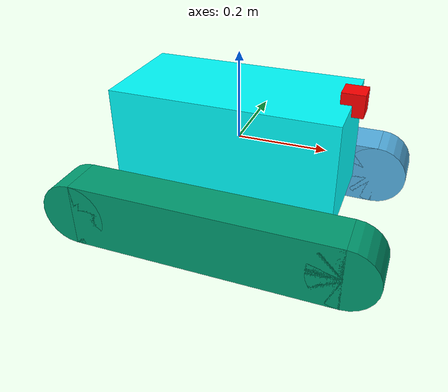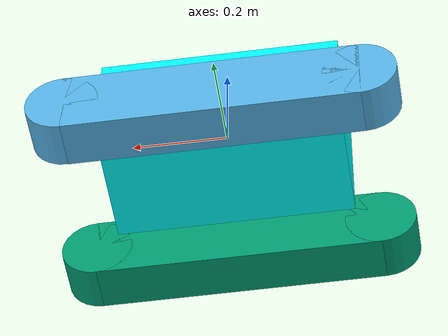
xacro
<?xml version="1.0"?>
<robot name="lunabot_track" xmlns:xacro="http://ros.org/wiki/xacro">

    <!-- Define robot constants -->
    <xacro:property name="base_length" value="0.5"/>
    <xacro:property name="base_width" value="0.25"/>
    <xacro:property name="base_height" value="0.25"/>

    <xacro:property name="track_length" value="0.6"/>
    <xacro:property name="track_width" value="0.1"/>
    <xacro:property name="track_height" value="0.15"/>
    <xacro:property name="track_yoff" value="0.2"/>
    <xacro:property name="track_zoff" value="0.13"/>

    <xacro:property name="camera_size" value="0.05"/>

    <!-- Define intertial property macros -->
    <xacro:macro name="box_inertia" params="m w h d">
        <inertial>
            <origin xyz="0 0 0" rpy="0 0 0"/>
            <mass value="${m}"/>
            <inertia ixx="${(m/12) * (h*h + d*d)}" ixy="0.0" ixz="0.0" iyy="${(m/12) * (w*w + d*d)}" iyz="0.0" izz="${(m/12) * (w*w + h*h)}"/>
        </inertial>
    </xacro:macro>

    <xacro:macro name="cylinder_inertia" params="m r h">
        <inertial>
            <origin xyz="0 0 0" rpy="${pi/2} 0 0"/>
            <mass value="${m}"/>
            <inertia ixx="${(m/12) * (3*r*r + h*h)}" ixy = "0" ixz = "0" iyy="${(m/12) * (3*r*r + h*h)}" iyz = "0" izz="${(m/2) * (r*r)}"/>
        </inertial>
    </xacro:macro>

    <!-- Base Footprint -->

    <!-- Robot Base -->
    <link name="base_link">
        <origin xyz="0 0 0" rpy="0 0 0"/>
        <visual>
            <geometry>
                <box size="${base_length} ${base_width} ${base_height}"/>
            </geometry>
            <material name="Cyan">
                <color rgba="0 1.0 1.0 1.0"/>
            </material>
        </visual>
        <collision>
            <geometry>
                <box size="${base_length} ${base_width} ${base_height}"/>
            </geometry>
        </collision>
        <xacro:box_inertia m="5" w="${base_length}" h="${base_width}" d="${base_height}"/>
    </link>

    <!-- Tracks -->
    <xacro:macro name="track" params="prefix y_reflect">
        <link name="${prefix}_track_link">
            <visual>
                <geometry>
                    <box size="${track_length} ${track_width} ${track_height}"/>
                </geometry>
            </visual>
            <visual>
                <origin xyz="${track_length/2} 0 0" rpy="${pi/2} 0 0"/>
                <geometry>
                    <cylinder radius="${track_height/2}" length="${track_width}"/>
                </geometry>
            </visual>
            <visual>
                <origin xyz="${-track_length/2} 0 0" rpy="${pi/2} 0 0"/>
                <geometry>
                    <cylinder radius="${track_height/2}" length="${track_width}"/>
                </geometry>
            </visual>
            <collision>
                <geometry>
                    <box size="${track_length} ${track_width} ${track_height}"/>
                </geometry>
            </collision>
            <collision>
                <origin xyz="${track_length/2} 0 0" rpy="${pi/2} 0 0"/>
                <geometry>
                    <cylinder radius="${track_height/2}" length="${track_width}"/>
                </geometry>
            </collision>
            <collision>
                <origin xyz="${-track_length/2} 0 0" rpy="${pi/2} 0 0"/>
                <geometry>
                    <cylinder radius="${track_height/2}" length="${track_width}"/>
                </geometry>
            </collision>
            <xacro:box_inertia m="2" w="${track_length}" h="${track_width}" d="${track_height}"/>
            <gravity>1</gravity>
            <kinematic>0</kinematic>
        </link>
        <joint name="${prefix}_track_j" type="fixed">
            <parent link="base_link"/>
            <child link="${prefix}_track_link"/>
            <origin xyz="0 ${y_reflect * track_yoff} ${-track_zoff}" rpy="0 0 0"/>
        </joint>
    </xacro:macro>
    <xacro:track prefix="left" y_reflect="1.0"/>
    <xacro:track prefix="right" y_reflect="-1.0"/>

    <gazebo reference="left_track_link">
        <mu1>0.7</mu1>
        <mu2>150</mu2>
        <fdir1>0 1 0</fdir1>
    </gazebo>
    <gazebo reference="right_track_link">
        <mu1>0.7</mu1>
        <mu2>150</mu2>
        <fdir1>0 1 0</fdir1>
    </gazebo>
    <gazebo reference="left_track_j">
        <preserveFixedJoint>true</preserveFixedJoint>
    </gazebo>
    <gazebo reference="right_track_j">
        <preserveFixedJoint>true</preserveFixedJoint>
    </gazebo>
    <gazebo>
        <plugin filename="libSimpleTrackedVehiclePlugin.so" name="simple_tracked_vehicle">
            <body>base_link</body>
            <left_track>left_track_link</left_track>
            <right_track>right_track_link</right_track>
            <track_mu>100</track_mu>
            <track_mu2>100</track_mu2>
        </plugin>

        <plugin filename="libKeysToCmdVelPlugin.so" name="keyboard_control">
            <publish_as_twist>true</publish_as_twist>
            <cmd_vel_topic>~/test_bot/cmd_vel_twist</cmd_vel_topic>
        </plugin>
    </gazebo>

    <link name="depth_camera_link">
        <origin xyz="0 0 0" rpy="0 0 0"/>
        <visual>
            <geometry>
                <box size="${camera_size} ${camera_size} ${camera_size}"/>
            </geometry>
            <material name="Red">
                <color rgba="1.0 0 0 1.0"/>
            </material>
        </visual>
        <collision>
            <geometry>
                <box size="${camera_size} ${camera_size} ${camera_size}"/>
            </geometry>
        </collision>
        <xacro:box_inertia m="0.1" w="${camera_size}" h="${camera_size}" d="${camera_size}"/>
    </link>
    <joint name="depth_camera_j" type="fixed">
        <parent link="base_link"/>
        <child link="depth_camera_link"/>
        <origin xyz="${base_length/2} 0 ${base_height/2}" rpy="0 0 0"/>
    </joint>
    <link name="depth_camera_optical_link"/>
    <joint name="depth_camera_optical_j" type="fixed">
        <parent link="depth_camera_link"/>
        <child link="depth_camera_optical_link"/>
        <origin xyz="0 0 0" rpy="${-pi/2} 0 ${-pi/2}"/>
    </joint>

    <gazebo reference="depth_camera_link">
        <material>Gazebo/Red</material>
        <sensor name="depth_camera" type="depth">
            <always_on>1</always_on>
            <update_rate>10</update_rate>
            <visualize>true</visualize>
            <camera>
                <horizontal_fov>1.51844</horizontal_fov>
                <image>
                    <width>320</width>
                    <height>320</height>
                    <format>R8G8B8</format>
                </image>
                <clip>
                    <near>0.05</near>
                    <far>10.0</far>
                </clip>
            </camera>
            <plugin filename="libgazebo_ros_camera.so" name="depth_camera_controller">
                <frame_name>depth_camera_optical_link</frame_name>
            </plugin>
        </sensor>
    </gazebo>

    <gazebo>
        <plugin filename="libgazebo_ros_p3d.so" name="p3d_controller">
            <ros>
                <namespace>ground_truth</namespace>
                <remapping>odom:=odom</remapping>
            </ros>
            <always_on>true</always_on>
            <update_rate>50.0</update_rate>
            <body_name>base_link</body_name>
            <frame_name>map</frame_name>
            <xyz_offset>0 0 0</xyz_offset>
            <rpy_offset>0 0 0</rpy_offset>
        </plugin>
    </gazebo>

</robot>
